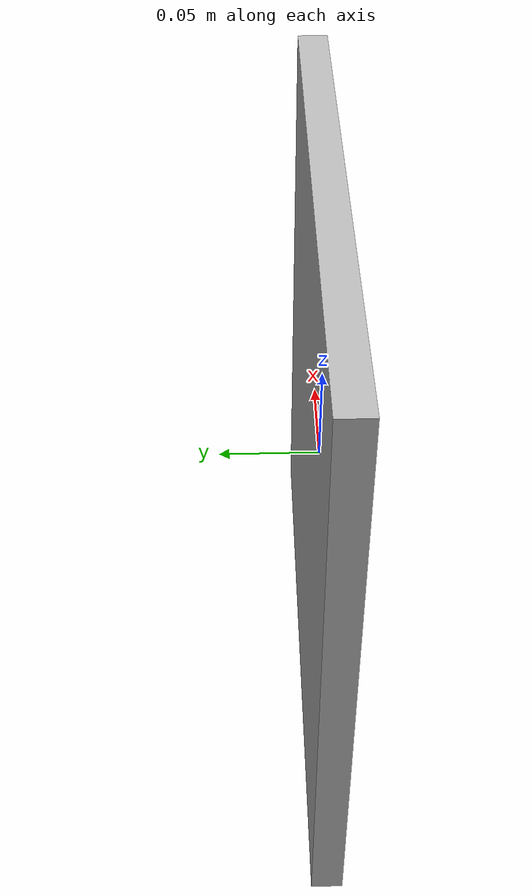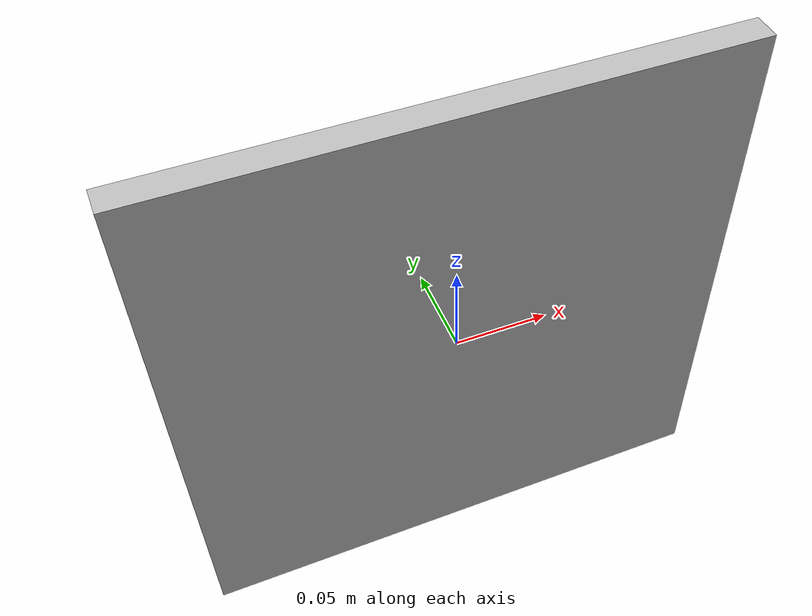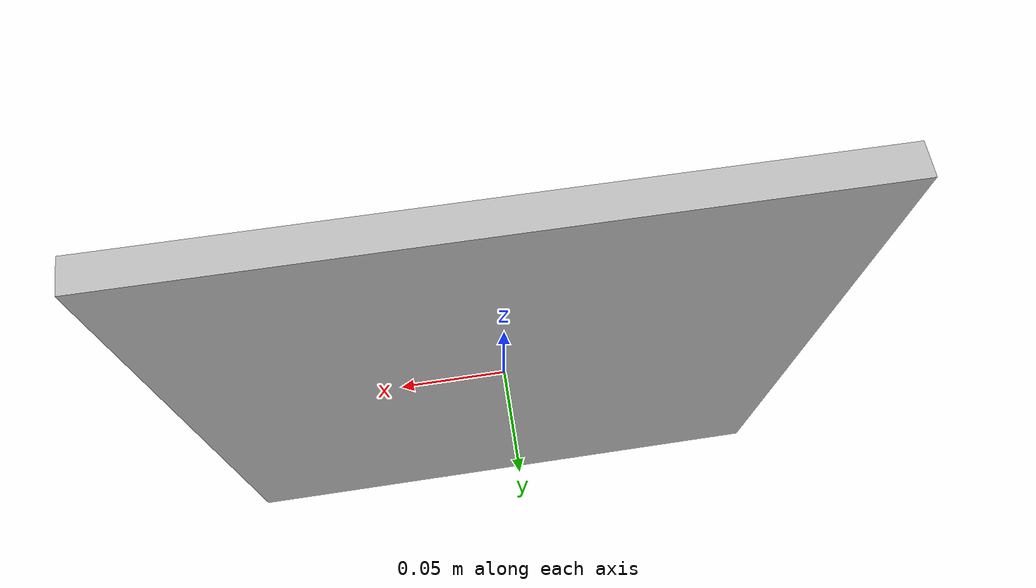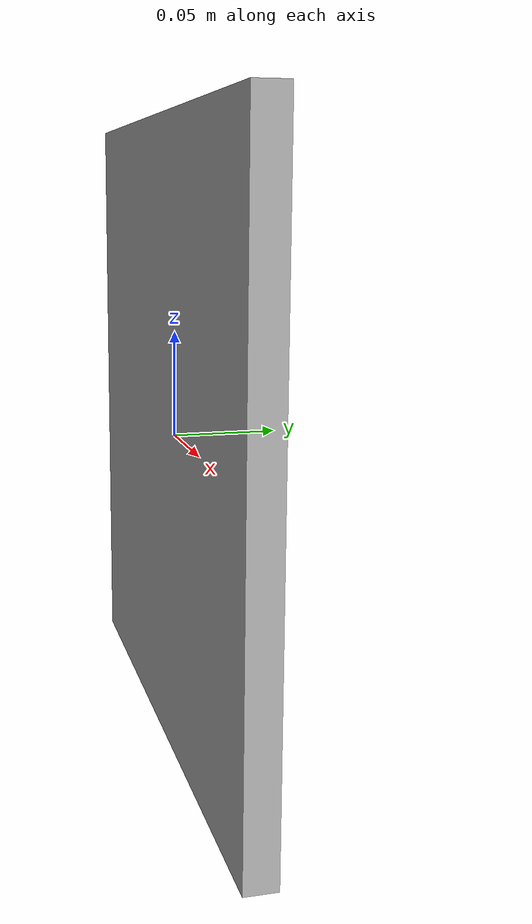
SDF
<?xml version="1.0"?>
<sdf version="1.6">
  <model name="aruco1">
    <static>true</static>
    <link name="link">
      <collision name="collision">
        <geometry>
          <mesh>
            <uri>model://aruco1/meshes/aruco1.obj</uri>
            <scale>0.15 0.15 0.15</scale>
          </mesh>
        </geometry>
      </collision>
      <visual name="visual">
        <geometry>
          <mesh>
            <uri>model://aruco1/meshes/aruco1.obj</uri>
            <scale>0.15 0.15 0.15</scale>
          </mesh>
        </geometry>
      </visual>
    </link>
  </model>
</sdf>
